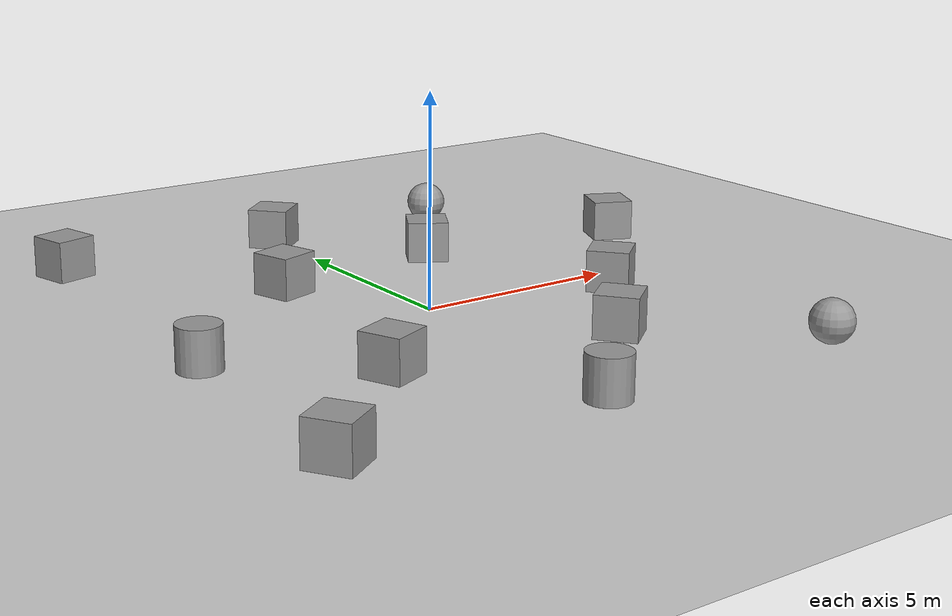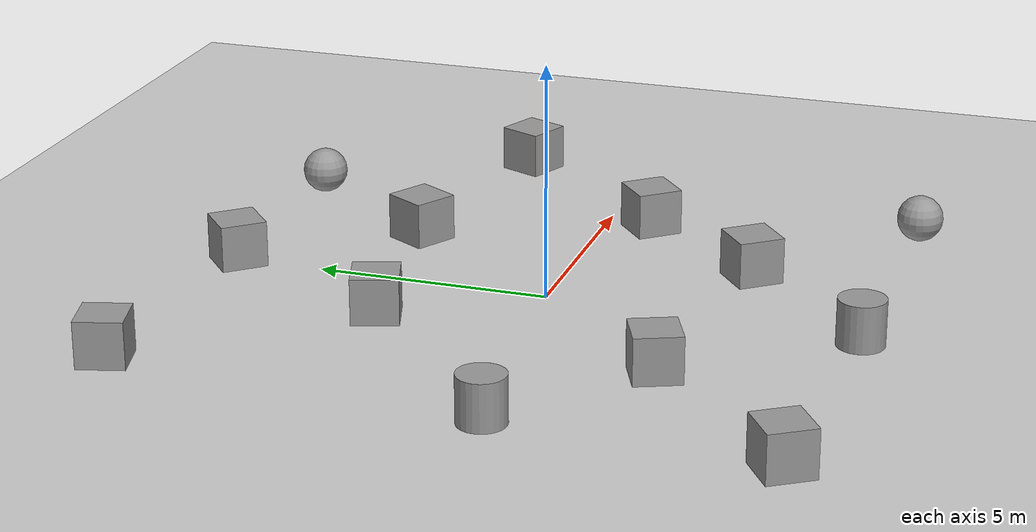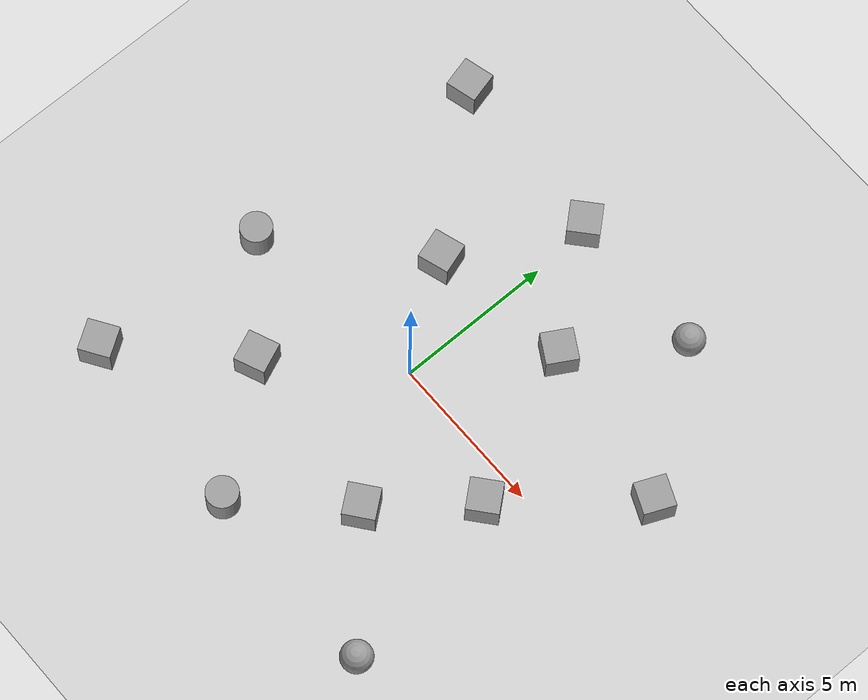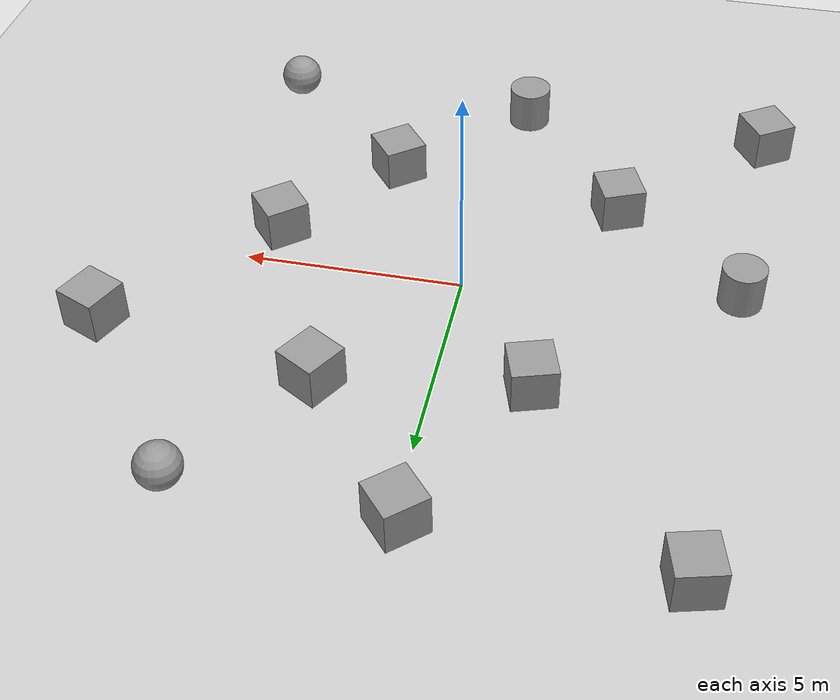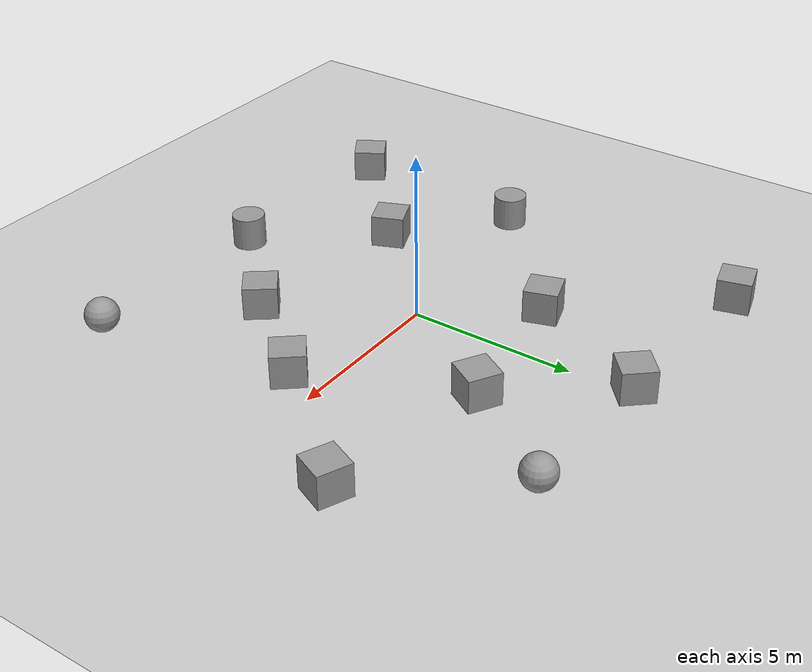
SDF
<sdf version="1.6">
 <world name="default">
  <light name="sun" type="directional">
   <pose>0 0 10 0 -0 0</pose>
   <diffuse>0.8 0.8 0.8 1</diffuse>
   <specular>0.1 0.1 0.1 1</specular>
   <attenuation>
    <range>1000</range>
    <constant>0.9</constant>
    <linear>0.01</linear>
    <quadratic>0.001</quadratic>
   </attenuation>
   <direction>-0.5 0.5 -1</direction>
  </light>
  <model name="ground_plane">
   <static>1</static>
   <link name="link">
    <collision name="collision">
     <geometry><plane><normal>0 0 1</normal><size>100 100</size></plane></geometry>
     <surface><friction><ode><mu>100</mu><mu2>50</mu2></ode></friction></surface>
    </collision>
    <visual name="visual">
     <cast_shadows>0</cast_shadows>
     <geometry><plane><normal>0 0 1</normal><size>100 100</size></plane></geometry>
     <material>
      <script><uri>file://media/materials/scripts/gazebo.material</uri><name>Gazebo/Grey</name></script>
     </material>
    </visual>
   </link>
  </model>
  <gravity>0 0 -9.8</gravity>
  <magnetic_field>6e-06 2.3e-05 -4.2e-05</magnetic_field>
  <atmosphere type="adiabatic"/>
  <physics name="default_physics" default="0" type="ode">
   <max_step_size>0.001</max_step_size>
   <real_time_factor>1</real_time_factor>
   <real_time_update_rate>1000</real_time_update_rate>
  </physics>
  <scene><ambient>0.4 0.4 0.4 1</ambient><background>0.7 0.7 0.7 1</background><shadows>1</shadows></scene>
  <spherical_coordinates>
   <surface_model>EARTH_WGS84</surface_model>
   <latitude_deg>0</latitude_deg>
   <longitude_deg>0</longitude_deg>
   <elevation>0</elevation>
   <heading_deg>0</heading_deg>
  </spherical_coordinates>
  <model name="unit_box_0_11">
   <pose>-6.42645 -6.41635 0.5 0 -0 0.576796</pose>
   <link name="link">
    <inertial>
     <mass>1</mass>
     <inertia>
      <ixx>0.166667</ixx>
      <ixy>0</ixy>
      <ixz>0</ixz>
      <iyy>0.166667</iyy>
      <iyz>0</iyz>
      <izz>0.166667</izz>
     </inertia>
    </inertial>
    <collision name="collision"><geometry><box><size>1 1 1</size></box></geometry></collision>
    <visual name="visual">
     <geometry><box><size>1 1 1</size></box></geometry>
     <material>
      <script><name>Gazebo/Grey</name><uri>file://media/materials/scripts/gazebo.material</uri></script>
     </material>
    </visual>
   </link>
  </model>
  <model name="unit_box_0_12">
   <pose>4.48402 -1.02399 0.5 0 0 -0.872604</pose>
   <link name="link">
    <inertial>
     <mass>1</mass>
     <inertia>
      <ixx>0.166667</ixx>
      <ixy>0</ixy>
      <ixz>0</ixz>
      <iyy>0.166667</iyy>
      <iyz>0</iyz>
      <izz>0.166667</izz>
     </inertia>
    </inertial>
    <collision name="collision"><geometry><box><size>1 1 1</size></box></geometry></collision>
    <visual name="visual">
     <geometry><box><size>1 1 1</size></box></geometry>
     <material>
      <script><name>Gazebo/Grey</name><uri>file://media/materials/scripts/gazebo.material</uri></script>
     </material>
    </visual>
   </link>
  </model>
  <model name="unit_box_0_13">
   <pose>-5.69631 7.2182 0.5 0 0 -1.31555</pose>
   <link name="link">
    <inertial>
     <mass>1</mass>
     <inertia>
      <ixx>0.166667</ixx>
      <ixy>0</ixy>
      <ixz>0</ixz>
      <iyy>0.166667</iyy>
      <iyz>0</iyz>
      <izz>0.166667</izz>
     </inertia>
    </inertial>
    <collision name="collision"><geometry><box><size>1 1 1</size></box></geometry></collision>
    <visual name="visual">
     <geometry><box><size>1 1 1</size></box></geometry>
     <material>
      <script><name>Gazebo/Grey</name><uri>file://media/materials/scripts/gazebo.material</uri></script>
     </material>
    </visual>
   </link>
  </model>
  <model name="unit_sphere_0_2">
   <pose>4.6156 6.77869 0.5 0 -0 0</pose>
   <link name="link">
    <inertial>
     <mass>1</mass>
     <inertia><ixx>0.1</ixx><ixy>0</ixy><ixz>0</ixz><iyy>0.1</iyy><iyz>0</iyz><izz>0.1</izz></inertia>
    </inertial>
    <collision name="collision"><geometry><sphere><radius>0.5</radius></sphere></geometry></collision>
    <visual name="visual">
     <geometry><sphere><radius>0.5</radius></sphere></geometry>
     <material>
      <script><name>Gazebo/Grey</name><uri>file://media/materials/scripts/gazebo.material</uri></script>
     </material>
    </visual>
   </link>
  </model>
  <model name="unit_cylinder_0_2">
   <pose>-6.16319 -0.700762 0.499992 -3e-06 2e-06 0</pose>
   <link name="link">
    <inertial>
     <mass>1</mass>
     <inertia><ixx>0.145833</ixx><ixy>0</ixy><ixz>0</ixz><iyy>0.145833</iyy><iyz>0</iyz><izz>0.125</izz></inertia>
    </inertial>
    <collision name="collision">
     <geometry><cylinder><radius>0.5</radius><length>1</length></cylinder></geometry>
    </collision>
    <visual name="visual">
     <geometry><cylinder><radius>0.5</radius><length>1</length></cylinder></geometry>
     <material>
      <script><name>Gazebo/Grey</name><uri>file://media/materials/scripts/gazebo.material</uri></script>
     </material>
    </visual>
   </link>
  </model>
  <model name="unit_cylinder_0_3">
   <pose>-0.46915 -6.67633 0.499998 3e-06 -2e-06 0</pose>
   <link name="link">
    <inertial>
     <mass>1</mass>
     <inertia><ixx>0.145833</ixx><ixy>0</ixy><ixz>0</ixz><iyy>0.145833</iyy><iyz>0</iyz><izz>0.125</izz></inertia>
    </inertial>
    <collision name="collision">
     <geometry><cylinder><radius>0.5</radius><length>1</length></cylinder></geometry>
    </collision>
    <visual name="visual">
     <geometry><cylinder><radius>0.5</radius><length>1</length></cylinder></geometry>
     <material>
      <script><name>Gazebo/Grey</name><uri>file://media/materials/scripts/gazebo.material</uri></script>
     </material>
    </visual>
   </link>
  </model>
  <model name="unit_sphere_0_3">
   <pose>5.64002 -6.80198 0.5 0 -0 0</pose>
   <link name="link">
    <inertial>
     <mass>1</mass>
     <inertia><ixx>0.1</ixx><ixy>0</ixy><ixz>0</ixz><iyy>0.1</iyy><iyz>0</iyz><izz>0.1</izz></inertia>
    </inertial>
    <collision name="collision"><geometry><sphere><radius>0.5</radius></sphere></geometry></collision>
    <visual name="visual">
     <geometry><sphere><radius>0.5</radius></sphere></geometry>
     <material>
      <script><name>Gazebo/Grey</name><uri>file://media/materials/scripts/gazebo.material</uri></script>
     </material>
    </visual>
   </link>
  </model>
  <model name="unit_box_0_15">
   <pose>-0.10838 6.87819 0.5 0 -0 0.7218</pose>
   <link name="link">
    <inertial>
     <mass>1</mass>
     <inertia>
      <ixx>0.166667</ixx>
      <ixy>0</ixy>
      <ixz>0</ixz>
      <iyy>0.166667</iyy>
      <iyz>0</iyz>
      <izz>0.166667</izz>
     </inertia>
    </inertial>
    <collision name="collision"><geometry><box><size>1 1 1</size></box></geometry></collision>
    <visual name="visual">
     <geometry><box><size>1 1 1</size></box></geometry>
     <material>
      <script><name>Gazebo/Grey</name><uri>file://media/materials/scripts/gazebo.material</uri></script>
     </material>
    </visual>
   </link>
  </model>
  <model name="unit_box_0_16">
   <pose>-2.05273 2.96528 0.499996 9e-06 -0 -1.26291</pose>
   <link name="link">
    <inertial>
     <mass>1</mass>
     <inertia>
      <ixx>0.166667</ixx>
      <ixy>0</ixy>
      <ixz>0</ixz>
      <iyy>0.166667</iyy>
      <iyz>0</iyz>
      <izz>0.166667</izz>
     </inertia>
    </inertial>
    <collision name="collision"><geometry><box><size>1 1 1</size></box></geometry></collision>
    <visual name="visual">
     <geometry><box><size>1 1 1</size></box></geometry>
     <material>
      <script><name>Gazebo/Grey</name><uri>file://media/materials/scripts/gazebo.material</uri></script>
     </material>
    </visual>
   </link>
  </model>
  <model name="unit_box_0_17">
   <pose>7.60668 2.70784 0.499995 0 -1e-05 1.16347</pose>
   <link name="link">
    <inertial>
     <mass>1</mass>
     <inertia>
      <ixx>0.166667</ixx>
      <ixy>0</ixy>
      <ixz>0</ixz>
      <iyy>0.166667</iyy>
      <iyz>0</iyz>
      <izz>0.166667</izz>
     </inertia>
    </inertial>
    <collision name="collision"><geometry><box><size>1 1 1</size></box></geometry></collision>
    <visual name="visual">
     <geometry><box><size>1 1 1</size></box></geometry>
     <material>
      <script><name>Gazebo/Grey</name><uri>file://media/materials/scripts/gazebo.material</uri></script>
     </material>
    </visual>
   </link>
  </model>
  <model name="unit_box_0_19">
   <pose>-3.1371 -3.18462 0.499995 -1e-05 0 0.39807</pose>
   <link name="link">
    <inertial>
     <mass>1</mass>
     <inertia>
      <ixx>0.166667</ixx>
      <ixy>0</ixy>
      <ixz>0</ixz>
      <iyy>0.166667</iyy>
      <iyz>0</iyz>
      <izz>0.166667</izz>
     </inertia>
    </inertial>
    <collision name="collision"><geometry><box><size>1 1 1</size></box></geometry></collision>
    <visual name="visual">
     <geometry><box><size>1 1 1</size></box></geometry>
     <material>
      <script><name>Gazebo/Grey</name><uri>file://media/materials/scripts/gazebo.material</uri></script>
     </material>
    </visual>
   </link>
  </model>
  <model name="unit_box_0_20">
   <pose>2.32386 -3.81127 0.5 0 0 -2.47602</pose>
   <link name="link">
    <inertial>
     <mass>1</mass>
     <inertia>
      <ixx>0.166667</ixx>
      <ixy>0</ixy>
      <ixz>0</ixz>
      <iyy>0.166667</iyy>
      <iyz>0</iyz>
      <izz>0.166667</izz>
     </inertia>
    </inertial>
    <collision name="collision"><geometry><box><size>1 1 1</size></box></geometry></collision>
    <visual name="visual">
     <geometry><box><size>1 1 1</size></box></geometry>
     <material>
      <script><name>Gazebo/Grey</name><uri>file://media/materials/scripts/gazebo.material</uri></script>
     </material>
    </visual>
   </link>
  </model>
  <model name="unit_box_0_21">
   <pose>2.44133 3.62362 0.5 0 -0 1.04345</pose>
   <link name="link">
    <inertial>
     <mass>1</mass>
     <inertia>
      <ixx>0.166667</ixx>
      <ixy>0</ixy>
      <ixz>0</ixz>
      <iyy>0.166667</iyy>
      <iyz>0</iyz>
      <izz>0.166667</izz>
     </inertia>
    </inertial>
    <collision name="collision"><geometry><box><size>1 1 1</size></box></geometry></collision>
    <visual name="visual">
     <geometry><box><size>1 1 1</size></box></geometry>
     <material>
      <script><name>Gazebo/Grey</name><uri>file://media/materials/scripts/gazebo.material</uri></script>
     </material>
    </visual>
   </link>
  </model>
 </world>
</sdf>
